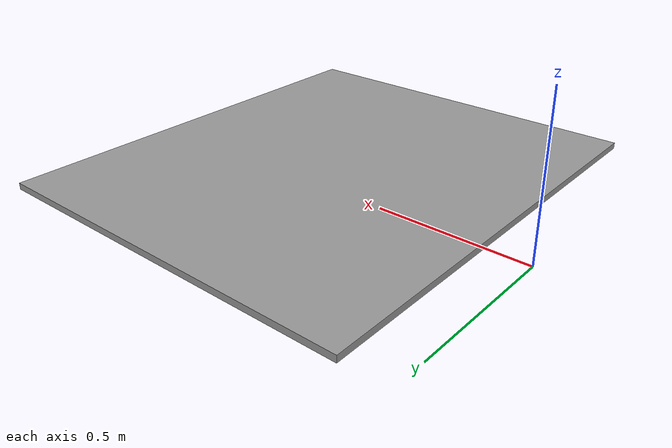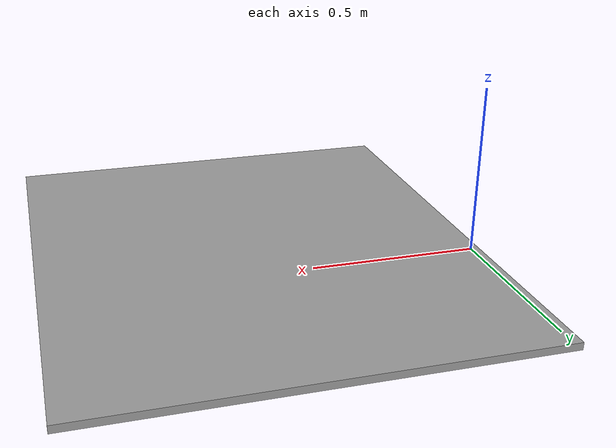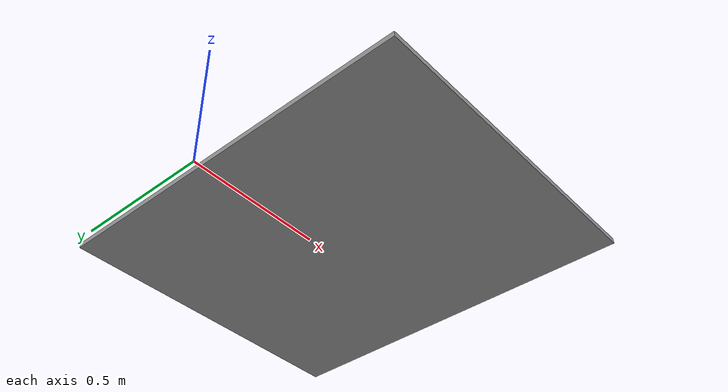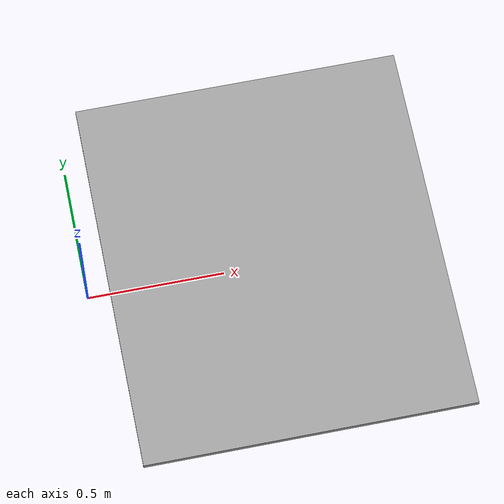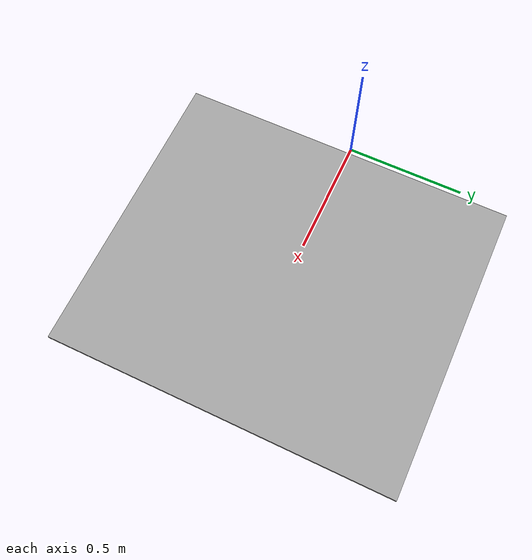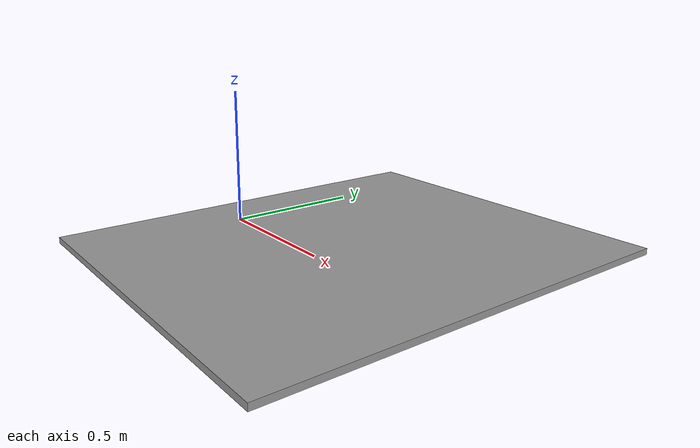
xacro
<?xml version="1.0"?>
<robot name="table" xmlns:xacro="http://www.ros.org/wiki/xacro">
 <!-- Import table  -->
  <xacro:include filename="$(find yumi_description)/urdf/yumi_table.urdf.xacro"/>

  <!-- Fix to world just for testing -->
  <link name="world"/>

  <xacro:yumi_table parent="world" table_height="0.1"/>
</robot>

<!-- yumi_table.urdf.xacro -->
<robot name="table" xmlns:xacro="http://www.ros.org/wiki/xacro">

  <property name="table_width" value="1.2" />
  <property name="table_depth" value="1.4" />
  <property name="leg_radius" value="0.02" />
  <property name="table_x" value="0.68" />
  <property name="table_y" value="0.0" />
  <property name="table_z" value="0.0" />

  <property name="table_top_thickness" value="0.02"/>

  <property name="M_PI" value="3.1415926535897931" />

  <!-- tabletop height is .55+.01+.025=.585 -->
  <xacro:macro name="yumi_table" params="parent table_height">

    <joint name="table_joint" type="fixed">
      <origin xyz="0 0 0" />
      <parent link="${parent}"/>
      <child link="table_top_link"/>
    </joint>

    <link name="table_top_link">
      <inertial>
        <mass value="1.0" />
        <origin xyz="${table_x} ${table_y} ${table_z+table_height-table_top_thickness/2}" />
        <inertia ixx="1" ixy="0"  ixz="0"
         iyy="1" iyz="0"
         izz="1" />
       </inertial>
       <visual>
        <origin xyz="${table_x} ${table_y} ${table_z+table_height-table_top_thickness/2}" />
        <geometry>
          <box size="${table_width} ${table_depth} ${table_top_thickness}" />
        </geometry>
      </visual>
      <collision>
        <origin xyz="${table_x} ${table_y} ${table_z+table_height-table_top_thickness/2}" />
        <geometry>
          <box size="${table_width} ${table_depth} ${table_top_thickness}" />
        </geometry>
      </collision>
      <inertial>
        <mass value="10"/>
        <inertial ixx="1.0" ixy="0.0" ixz="0.0" iyy="1.0" iyz="0.0" izz="1.0"/>
      </inertial>
    </link>
    <gazebo reference="table_top_link">
      <material>Gazebo/Grey</material>
      <mu1>50.0</mu1>
      <mu2>50.0</mu2>
      <kp>1000000.0</kp>
      <kd>1.0</kd>
      <self_collide>1</self_collide>
    </gazebo>

</xacro:macro>

</robot>
